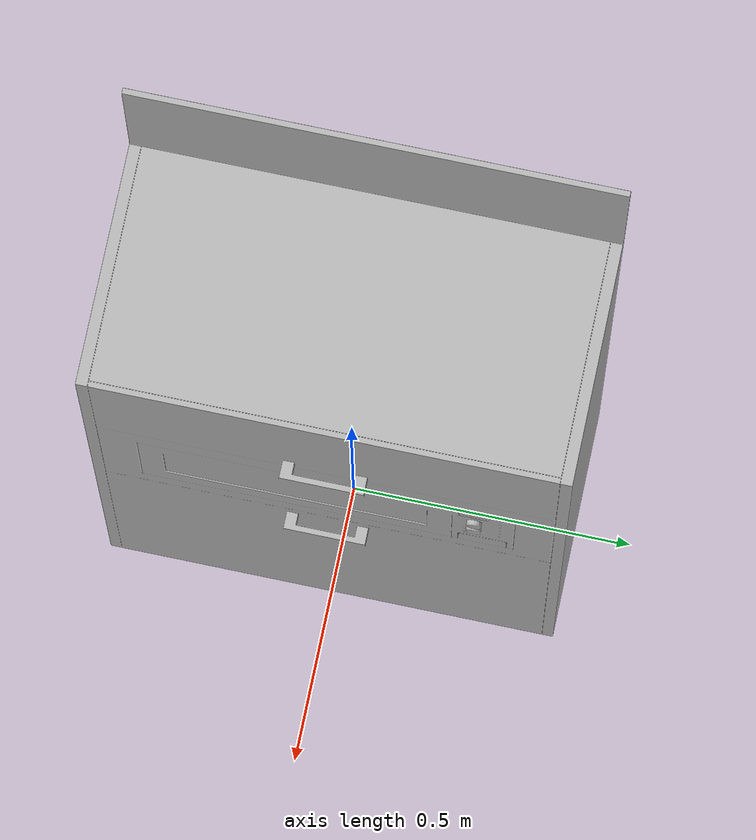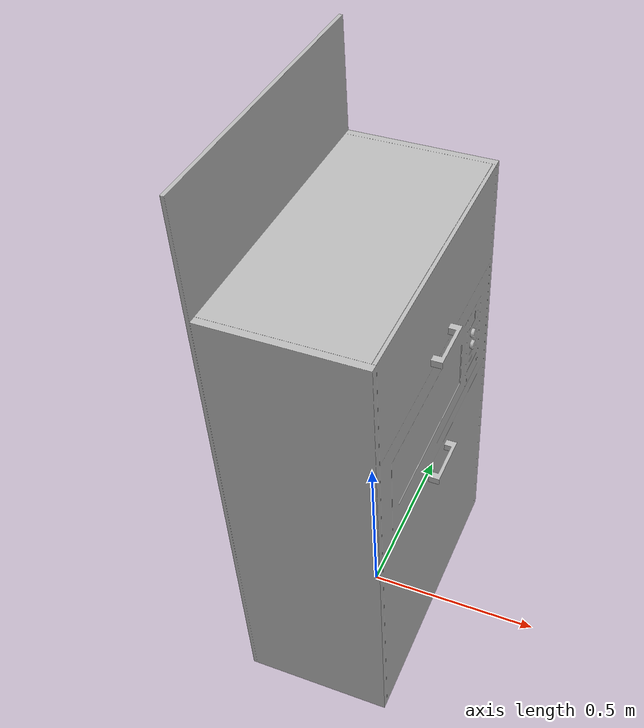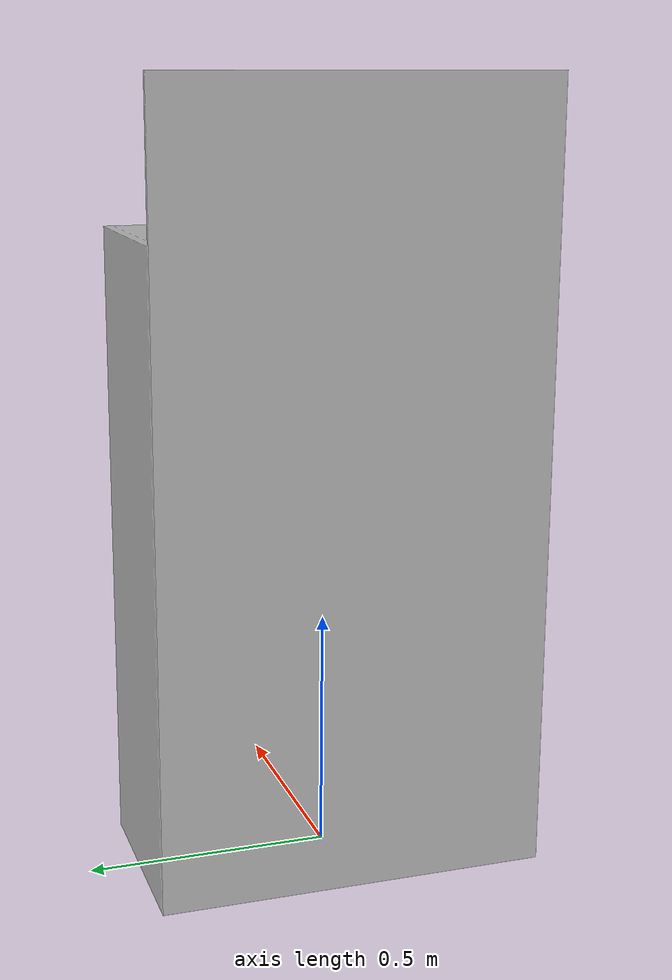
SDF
<?xml version='1.0'?>
<sdf version='1.4'>
  <model name='658'>
    <pose>0 0 0 0 0 0</pose>
    <static>true</static>
    <link name='link'>
      <collision name='collision'>
        <pose>0 0 0 0 0 0</pose>
        <geometry>
          <box>
            <size>0.44 0.8 2</size>
          </box>
        </geometry>
      </collision>
      <visual name='visual'>
        <pose>0 0 0 0 0 0</pose>
        <geometry>
          <mesh><uri>model://658/658.dae</uri></mesh>
        </geometry>
      </visual>
    </link>
  </model>
</sdf>
